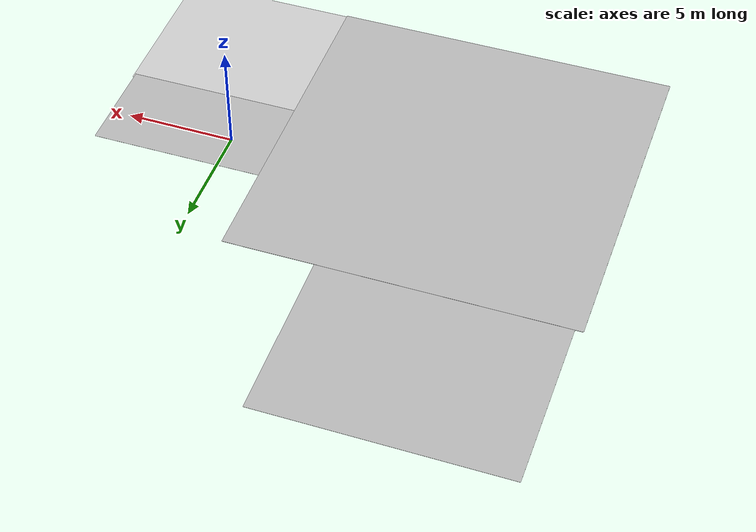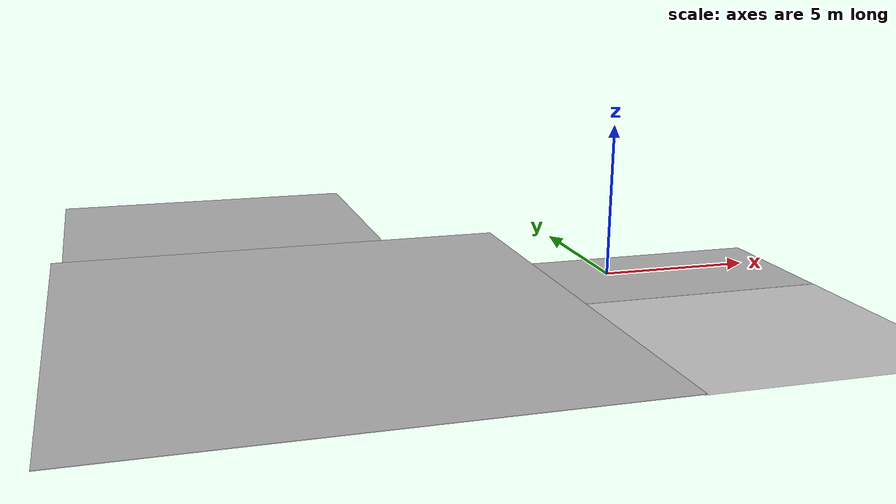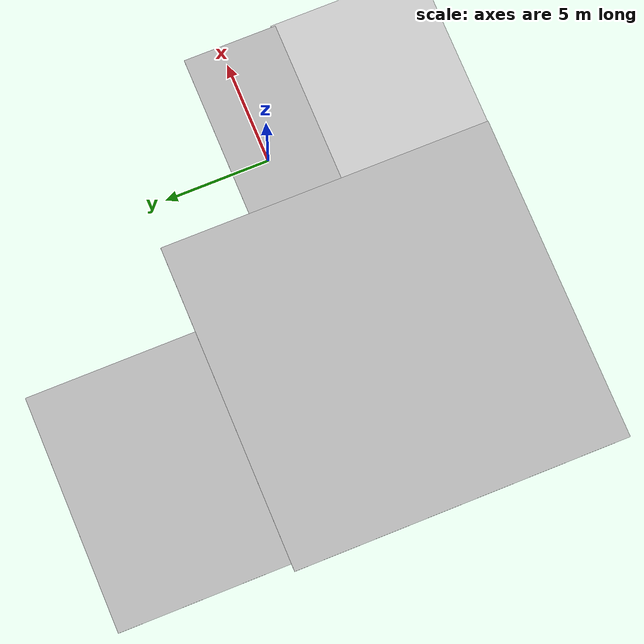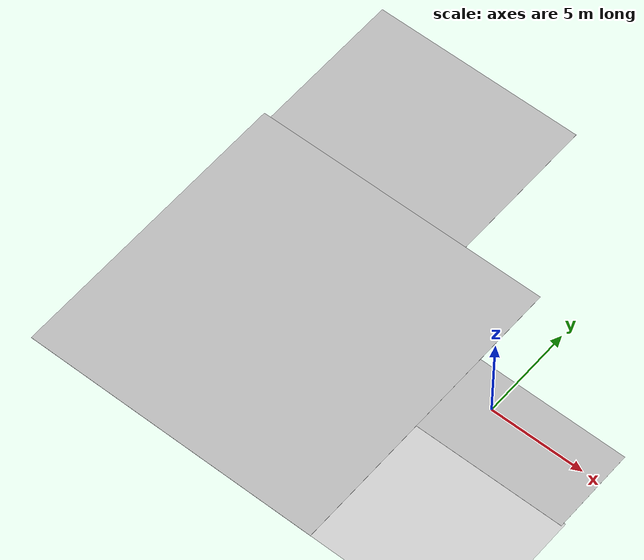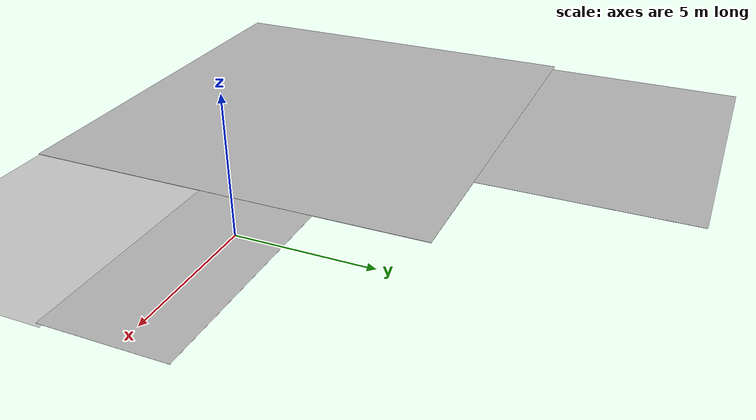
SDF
<?xml version="1.0" ?>
<sdf version='1.4'>
  <world name='default'>

    <!-- global light source -->

    <light type="directional" name="sun">
      <cast_shadows>false</cast_shadows>
      <pose>0 1 10 0 0 0</pose>
      <diffuse>0.8 0.8 0.8 1</diffuse>
      <specular>0.1 0.1 0.1 1</specular>
      <attenuation>
        <range>1000</range>
        <constant>0.9</constant>
        <linear>0.01</linear>
        <quadratic>0.001</quadratic>
      </attenuation>
      <direction>-0.5 0.5 -1.0</direction>
    </light>

    <light name='my_light' type='directional'>
      <pose>0.000000 0.000000 30.000000 0.000000 0.000000 0.000000</pose>
      <diffuse>0.900000 0.900000 0.900000 1.000000</diffuse>
      <specular>0.100000 0.100000 0.100000 1.000000</specular>
      <attenuation>
        <range>20.000000</range>
      </attenuation>
      <direction>0.000000 0.000000 -1.000000</direction>
      <cast_shadows>0</cast_shadows>
    </light>

    <!-- A ground plane -->

    <model name="floor_student_area">
      <static>true</static>
      <link name="link">
      <pose>2 -6.25 0 0 0 0</pose>
        <visual name="visual">
          <cast_shadows>false</cast_shadows>
          <geometry>
            <plane>
              <normal>0 0 1</normal>
              <size>8.1 7.4</size>
            </plane>
          </geometry>
          <material>
            <script>
              <name>carpet</name>
            </script>
          </material>
        </visual>
        <collision name="collision">
          <geometry>
            <plane>
              <normal>0 0 1</normal>
              <size>8.1 7.4</size>
            </plane>
          </geometry>
          <surface>
            <friction>
              <ode>
                <mu>100</mu>
                <mu2>50</mu2>
              </ode>
            </friction>
          </surface>
        </collision>
      </link>
    </model>

    <model name="floor_kitchen">
      <static>true</static>
      <link name="link">
      <pose>1.969 -0.5 0 0 0 0</pose>
        <visual name="visual">
          <cast_shadows>false</cast_shadows>
          <geometry>
            <plane>
              <normal>0 0 1</normal>
              <size>8 4.5</size>
            </plane>
          </geometry>
          <material>
            <script>
              <name>floor_kitchen</name>
            </script>
          </material>
        </visual>
        <collision name="collision">
          <geometry>
            <plane>
              <normal>0 0 1</normal>
              <size>8 4.5</size>
            </plane>
          </geometry>
          <surface>
            <friction>
              <ode>
                <mu>100</mu>
                <mu2>50</mu2>
              </ode>
            </friction>
          </surface>
        </collision>
      </link>
    </model>

    <model name="floor_office">
      <static>true</static>
      <link name="link">
      <pose>-11.931 9.93 0 0 0 0</pose>
        <visual name="visual">
          <cast_shadows>false</cast_shadows>
          <geometry>
            <plane>
              <normal>0 0 1</normal>
              <size>11.4 8.4</size>
            </plane>
          </geometry>
          <material>
            <script>
              <name>carpet</name>
            </script>
          </material>
        </visual>
        <collision name="collision">
          <geometry>
            <plane>
              <normal>0 0 1</normal>
              <size>11.4 8.4</size>
            </plane>
          </geometry>
          <surface>
            <friction>
              <ode>
                <mu>100</mu>
                <mu2>50</mu2>
              </ode>
            </friction>
          </surface>
        </collision>
      </link>
    </model>

    <model name="floor">
      <static>true</static>
      <link name="link">
      <pose>-10 -1.969 0 0 0 0</pose>
        <visual name="visual">
          <cast_shadows>false</cast_shadows>
          <geometry>
            <plane>
              <normal>0 0 1</normal>
              <size>16 16</size>
            </plane>
          </geometry>
          <material>
            <script>
              <name>carpet</name>
            </script>
          </material>
        </visual>
        <collision name="collision">
          <geometry>
            <plane>
              <normal>0 0 1</normal>
              <size>16 16</size>
            </plane>
          </geometry>
          <surface>
            <friction>
              <ode>
                <mu>100</mu>
                <mu2>50</mu2>
              </ode>
            </friction>
          </surface>
        </collision>
      </link>
    </model>

    <gui>
      <camera name='user_camera'>
        <pose>12 -3 12 0 0.7 3.14</pose>
      </camera>
    </gui>

  </world>
</sdf>
